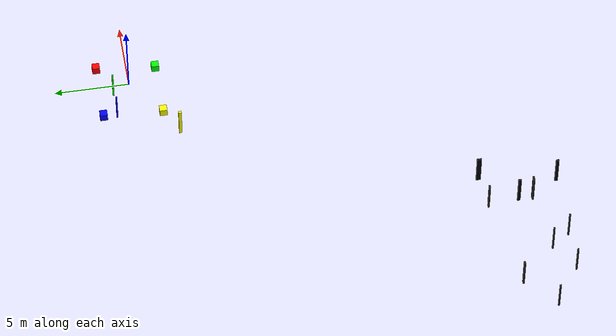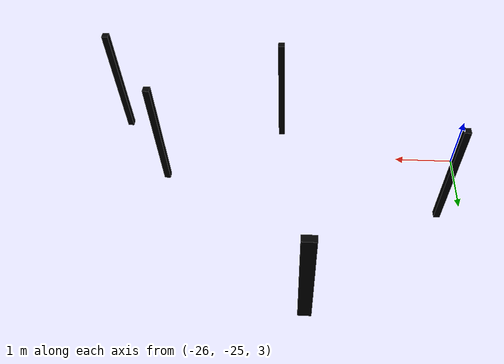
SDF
<sdf version="1.6">
 <world name="inspect">
  <light name="sun" type="directional">
   <cast_shadows>0</cast_shadows>
   <pose>0 0 10 0 -0 0</pose>
   <diffuse>1 1 1 1</diffuse>
   <specular>0.2 0.2 0.2 1</specular>
   <attenuation>
    <range>1000</range>
    <constant>0.9</constant>
    <linear>0.01</linear>
    <quadratic>0.001</quadratic>
   </attenuation>
   <direction>-0.5 -0.5 -1</direction>
  </light>
  <physics name="default_physics" default="0" type="ode">
   <max_step_size>0.005</max_step_size>
   <real_time_factor>1</real_time_factor>
   <real_time_update_rate>250</real_time_update_rate>
  </physics>
  <scene><ambient>1 1 1 1</ambient><background>1 1 1 1</background><shadows>1</shadows></scene>
  <spherical_coordinates>
   <surface_model>EARTH_WGS84</surface_model>
   <latitude_deg>0</latitude_deg>
   <longitude_deg>0</longitude_deg>
   <elevation>0</elevation>
   <heading_deg>0</heading_deg>
  </spherical_coordinates>
  <gravity>0 0 -9.8</gravity>
  <model name="static_box_red_2_2">
   <static>true</static>
   <pose>2 2 -0.25 0 0 0</pose>
   <link name="link">
    <collision name="collision"><geometry><box><size>0.5 0.5 0.5</size></box></geometry></collision>
    <visual name="visual">
     <geometry><box><size>0.5 0.5 0.5</size></box></geometry>
     <material>
      <ambient>1 0 0 1</ambient>
      <diffuse>1 0 0 1</diffuse>
      <specular>0.1 0.1 0.1 1</specular>
      <emissive>0 0 0 1</emissive>
     </material>
    </visual>
   </link>
  </model>
  <model name="static_box_green_2_-2">
   <static>true</static>
   <pose>2 -2 -0.75 0 0 0</pose>
   <link name="link">
    <collision name="collision"><geometry><box><size>0.5 0.5 0.5</size></box></geometry></collision>
    <visual name="visual">
     <geometry><box><size>0.5 0.5 0.5</size></box></geometry>
     <material>
      <ambient>0 1 0 1</ambient>
      <diffuse>0 1 0 1</diffuse>
      <specular>0.1 0.1 0.1 1</specular>
      <emissive>0 0 0 1</emissive>
     </material>
    </visual>
   </link>
  </model>
  <model name="static_skinny_green_2_-2">
   <static>true</static>
   <pose>1 1 -1 0 0 0</pose>
   <link name="link">
    <collision name="collision"><geometry><box><size>0.1 0.1 2</size></box></geometry></collision>
    <visual name="visual">
     <geometry><box><size>0.1 0.1 2</size></box></geometry>
     <material>
      <ambient>0 1 0 1</ambient>
      <diffuse>0 1 0 1</diffuse>
      <specular>0.1 0.1 0.1 1</specular>
      <emissive>0 0 0 1</emissive>
     </material>
    </visual>
   </link>
  </model>
  <model name="static_box_blue_-2_2">
   <static>true</static>
   <pose>-2 2 -0.5 0 0 0</pose>
   <link name="link">
    <collision name="collision"><geometry><box><size>0.5 0.5 0.5</size></box></geometry></collision>
    <visual name="visual">
     <geometry><box><size>0.5 0.5 0.5</size></box></geometry>
     <material>
      <ambient>0 0 1 1</ambient>
      <diffuse>0 0 1 1</diffuse>
      <specular>0.1 0.1 0.1 1</specular>
      <emissive>0 0 0 1</emissive>
     </material>
    </visual>
   </link>
  </model>
  <model name="static_skinny_blue_-2_2">
   <static>true</static>
   <pose>-1 1 -1 0 0 0</pose>
   <link name="link">
    <collision name="collision"><geometry><box><size>0.1 0.1 2.0</size></box></geometry></collision>
    <visual name="visual">
     <geometry><box><size>0.1 0.1 2</size></box></geometry>
     <material>
      <ambient>0 0 1 1</ambient>
      <diffuse>0 0 1 1</diffuse>
      <specular>0.1 0.1 0.1 1</specular>
      <emissive>0 0 0 1</emissive>
     </material>
    </visual>
   </link>
  </model>
  <model name="static_box_yellow_-2_-2">
   <static>true</static>
   <pose>-2 -2 -0.75 0 0 0</pose>
   <link name="link">
    <collision name="collision"><geometry><box><size>0.5 0.5 0.5</size></box></geometry></collision>
    <visual name="visual">
     <geometry><box><size>0.5 0.5 0.5</size></box></geometry>
     <material>
      <ambient>1 1 0 1</ambient>
      <diffuse>1 1 0 1</diffuse>
      <specular>0.1 0.1 0.1 1</specular>
      <emissive>0 0 0 1</emissive>
     </material>
    </visual>
   </link>
  </model>
  <model name="static_skinny_yellow_-2_-2">
   <static>true</static>
   <pose>-3 -3 -1 0 0 0</pose>
   <link name="link">
    <collision name="collision"><geometry><box><size>0.2 0.2 2</size></box></geometry></collision>
    <visual name="visual">
     <geometry><box><size>0.2 0.2 2</size></box></geometry>
     <material>
      <ambient>1 1 0 1</ambient>
      <diffuse>1 1 0 1</diffuse>
      <specular>0.1 0.1 0.1 1</specular>
      <emissive>0 0 0 1</emissive>
     </material>
    </visual>
   </link>
  </model>
  <model name="box1_black">
   <static>true</static>
   <pose>-20.1 -25.4 4.3 0 0 0</pose>
   <link name="link">
    <collision name="collision"><geometry><box><size>0.1 0.1 2</size></box></geometry></collision>
    <visual name="visual">
     <geometry><box><size>0.1 0.1 2</size></box></geometry>
     <material><ambient>0 0 0 1</ambient><diffuse>0 0 0 1</diffuse></material>
    </visual>
   </link>
  </model>
  <model name="box2_green">
   <static>true</static>
   <pose>-16.8 -22.9 4.3 0 0 0</pose>
   <link name="link">
    <collision name="collision"><geometry><box><size>0.1 0.2 2</size></box></geometry></collision>
    <visual name="visual">
     <geometry><box><size>0.1 0.2 2</size></box></geometry>
     <material><ambient>0 0 0 1</ambient><diffuse>0 0 0 1</diffuse></material>
    </visual>
   </link>
  </model>
  <model name="box3_blue">
   <static>true</static>
   <pose>-14.7 -20.7 4.3 0 0 0</pose>
   <link name="link">
    <collision name="collision"><geometry><box><size>0.1 0.3 2</size></box></geometry></collision>
    <visual name="visual">
     <geometry><box><size>0.1 0.3 2</size></box></geometry>
     <material><ambient>0 0 0 1</ambient><diffuse>0 0 0 1</diffuse></material>
    </visual>
   </link>
  </model>
  <model name="box4_blue">
   <static>true</static>
   <pose>-17.0 -20.9 4.3 0 0 0</pose>
   <link name="link">
    <collision name="collision"><geometry><box><size>0.2 0.1 2</size></box></geometry></collision>
    <visual name="visual">
     <geometry><box><size>0.2 0.1 2</size></box></geometry>
     <material><ambient>0 0 0 1</ambient><diffuse>0 0 0 1</diffuse></material>
    </visual>
   </link>
  </model>
  <model name="box5_red">
   <static>true</static>
   <pose>-15.6 -25.6 4.3 0 0 0</pose>
   <link name="link">
    <collision name="collision"><geometry><box><size>0.1 0.2 2</size></box></geometry></collision>
    <visual name="visual">
     <geometry><box><size>0.1 0.2 2</size></box></geometry>
     <material><ambient>0 0 0 1</ambient><diffuse>0 0 0 1</diffuse></material>
    </visual>
   </link>
  </model>
  <model name="box6_yellow">
   <static>true</static>
   <pose>-22.9 -25.3 4.3 0 0 0</pose>
   <link name="link">
    <collision name="collision"><geometry><box><size>0.1 0.1 2</size></box></geometry></collision>
    <visual name="visual">
     <geometry><box><size>0.1 0.1 2</size></box></geometry>
     <material><ambient>0 0 0 1</ambient><diffuse>0 0 0 1</diffuse></material>
    </visual>
   </link>
  </model>
  <model name="box7_blue">
   <static>true</static>
   <pose>-23.4 -21.8 4.3 0 0 0</pose>
   <link name="link">
    <collision name="collision"><geometry><box><size>0.2 0.1 2</size></box></geometry></collision>
    <visual name="visual">
     <geometry><box><size>0.2 0.1 2</size></box></geometry>
     <material><ambient>0 0 0 1</ambient><diffuse>0 0 0 1</diffuse></material>
    </visual>
   </link>
  </model>
  <model name="box8_green">
   <static>true</static>
   <pose>-25.5 -23.6 4.3 0 0 0</pose>
   <link name="link">
    <collision name="collision"><geometry><box><size>0.1 0.1 2</size></box></geometry></collision>
    <visual name="visual">
     <geometry><box><size>0.1 0.1 2</size></box></geometry>
     <material><ambient>0 0 0 1</ambient><diffuse>0 0 0 1</diffuse></material>
    </visual>
   </link>
  </model>
  <model name="box9_black">
   <static>true</static>
   <pose>-16.8 -23.8 4.3 0 0 0</pose>
   <link name="link">
    <collision name="collision"><geometry><box><size>0.3 0.1 2</size></box></geometry></collision>
    <visual name="visual">
     <geometry><box><size>0.3 0.1 2</size></box></geometry>
     <material><ambient>0 0 0 1</ambient><diffuse>0 0 0 1</diffuse></material>
    </visual>
   </link>
  </model>
  <model name="box10_black">
   <static>true</static>
   <pose>-21.0 -24.2 4.3 0 0 0</pose>
   <link name="link">
    <collision name="collision"><geometry><box><size>0.1 0.1 2</size></box></geometry></collision>
    <visual name="visual">
     <geometry><box><size>0.1 0.1 2</size></box></geometry>
     <material><ambient>0 0 0 1</ambient><diffuse>0 0 0 1</diffuse></material>
    </visual>
   </link>
  </model>
 </world>
</sdf>
